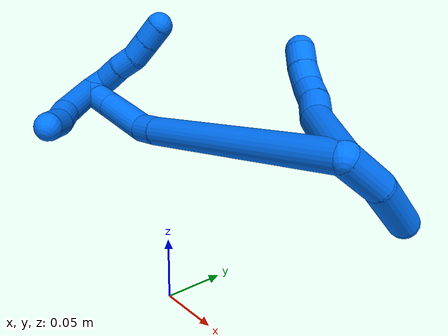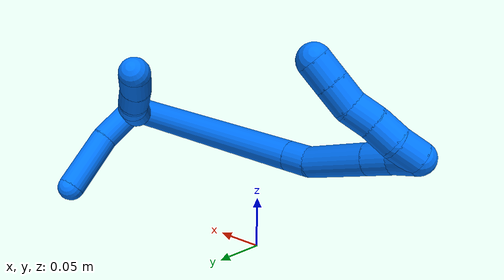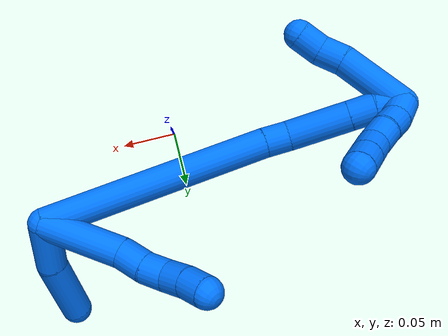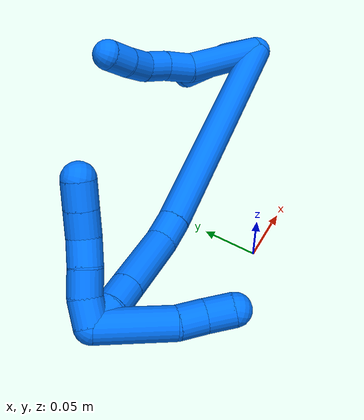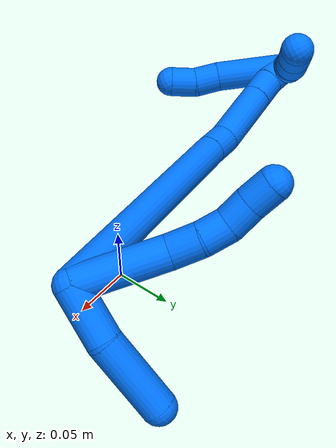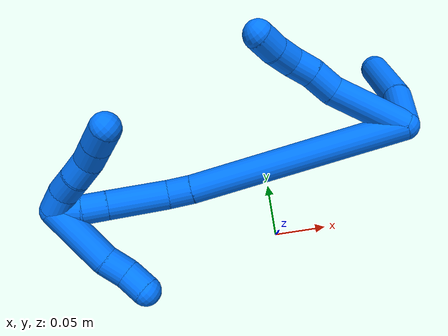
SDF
<sdf version="1.7">
 <world name="default">
  <model name="14">
   <static>0</static>
   <link name="14">
    <collision name="collision-cylinder-e_1_2_8">
     <pose>-0.010452 0.013149 0.028836 -0.427826 -0.318565 0.069767</pose>
     <geometry><cylinder><radius>0.0125</radius><length>0.066743</length></cylinder></geometry>
     <surface>
      <friction><ode><mu>1.16</mu><mu2>1.16</mu2><slip1>0</slip1><slip2>0</slip2></ode></friction>
      <contact><ode><kp>1e+06</kp><kd>1</kd><max_vel>0</max_vel><min_depth>0.001</min_depth></ode></contact>
     </surface>
    </collision>
    <visual name="visual-cylinder-e_1_2_8">
     <pose>-0.010452 0.013149 0.028836 -0.427826 -0.318565 0.069767</pose>
     <geometry><cylinder><radius>0.0125</radius><length>0.066743</length></cylinder></geometry>
     <material><ambient>0 0.462745 1 1</ambient></material>
    </visual>
    <collision name="collision-cylinder-e_2_8_9">
     <pose>-0.022402 0.028268 0.068983 -0.172391 -0.129716 0.011224</pose>
     <geometry><cylinder><radius>0.0125</radius><length>0.023158</length></cylinder></geometry>
     <surface>
      <friction><ode><mu>1.16</mu><mu2>1.16</mu2><slip1>0</slip1><slip2>0</slip2></ode></friction>
      <contact><ode><kp>1e+06</kp><kd>1</kd><max_vel>0</max_vel><min_depth>0.001</min_depth></ode></contact>
     </surface>
    </collision>
    <visual name="visual-cylinder-e_2_8_9">
     <pose>-0.022402 0.028268 0.068983 -0.172391 -0.129716 0.011224</pose>
     <geometry><cylinder><radius>0.0125</radius><length>0.023158</length></cylinder></geometry>
     <material><ambient>0 0.462745 1 1</ambient></material>
    </visual>
    <collision name="collision-cylinder-e_3_9_10">
     <pose>-0.027011 0.031793 0.089678 -0.164302 -0.316165 0.026249</pose>
     <geometry><cylinder><radius>0.0125</radius><length>0.020015</length></cylinder></geometry>
     <surface>
      <friction><ode><mu>1.16</mu><mu2>1.16</mu2><slip1>0</slip1><slip2>0</slip2></ode></friction>
      <contact><ode><kp>1e+06</kp><kd>1</kd><max_vel>0</max_vel><min_depth>0.001</min_depth></ode></contact>
     </surface>
    </collision>
    <visual name="visual-cylinder-e_3_9_10">
     <pose>-0.027011 0.031793 0.089678 -0.164302 -0.316165 0.026249</pose>
     <geometry><cylinder><radius>0.0125</radius><length>0.020015</length></cylinder></geometry>
     <material><ambient>0 0.462745 1 1</ambient></material>
    </visual>
    <collision name="collision-cylinder-e_4_10_11">
     <pose>-0.033156 0.031518 0.108457 0.192439 -0.306899 -0.029854</pose>
     <geometry><cylinder><radius>0.0125</radius><length>0.020081</length></cylinder></geometry>
     <surface>
      <friction><ode><mu>1.16</mu><mu2>1.16</mu2><slip1>0</slip1><slip2>0</slip2></ode></friction>
      <contact><ode><kp>1e+06</kp><kd>1</kd><max_vel>0</max_vel><min_depth>0.001</min_depth></ode></contact>
     </surface>
    </collision>
    <visual name="visual-cylinder-e_4_10_11">
     <pose>-0.033156 0.031518 0.108457 0.192439 -0.306899 -0.029854</pose>
     <geometry><cylinder><radius>0.0125</radius><length>0.020081</length></cylinder></geometry>
     <material><ambient>0 0.462745 1 1</ambient></material>
    </visual>
    <collision name="collision-cylinder-e_5_11_6">
     <pose>-0.037982 0.027872 0.127522 0.185561 -0.180148 -0.016807</pose>
     <geometry><cylinder><radius>0.0125</radius><length>0.020003</length></cylinder></geometry>
     <surface>
      <friction><ode><mu>1.16</mu><mu2>1.16</mu2><slip1>0</slip1><slip2>0</slip2></ode></friction>
      <contact><ode><kp>1e+06</kp><kd>1</kd><max_vel>0</max_vel><min_depth>0.001</min_depth></ode></contact>
     </surface>
    </collision>
    <visual name="visual-cylinder-e_5_11_6">
     <pose>-0.037982 0.027872 0.127522 0.185561 -0.180148 -0.016807</pose>
     <geometry><cylinder><radius>0.0125</radius><length>0.020003</length></cylinder></geometry>
     <material><ambient>0 0.462745 1 1</ambient></material>
    </visual>
    <collision name="collision-cylinder-e_1_2_12">
     <pose>0.012286 0.017025 0.001854 -1.46233 0.622317 -0.561718</pose>
     <geometry><cylinder><radius>0.0125</radius><length>0.042153</length></cylinder></geometry>
     <surface>
      <friction><ode><mu>1.16</mu><mu2>1.16</mu2><slip1>0</slip1><slip2>0</slip2></ode></friction>
      <contact><ode><kp>1e+06</kp><kd>1</kd><max_vel>0</max_vel><min_depth>0.001</min_depth></ode></contact>
     </surface>
    </collision>
    <visual name="visual-cylinder-e_1_2_12">
     <pose>0.012286 0.017025 0.001854 -1.46233 0.622317 -0.561718</pose>
     <geometry><cylinder><radius>0.0125</radius><length>0.042153</length></cylinder></geometry>
     <material><ambient>0 0.462745 1 1</ambient></material>
    </visual>
    <collision name="collision-cylinder-e_2_12_5">
     <pose>0.035484 0.060563 0.007521 -1.42796 0.386853 -0.336236</pose>
     <geometry><cylinder><radius>0.0125</radius><length>0.057847</length></cylinder></geometry>
     <surface>
      <friction><ode><mu>1.16</mu><mu2>1.16</mu2><slip1>0</slip1><slip2>0</slip2></ode></friction>
      <contact><ode><kp>1e+06</kp><kd>1</kd><max_vel>0</max_vel><min_depth>0.001</min_depth></ode></contact>
     </surface>
    </collision>
    <visual name="visual-cylinder-e_2_12_5">
     <pose>0.035484 0.060563 0.007521 -1.42796 0.386853 -0.336236</pose>
     <geometry><cylinder><radius>0.0125</radius><length>0.057847</length></cylinder></geometry>
     <material><ambient>0 0.462745 1 1</ambient></material>
    </visual>
    <collision name="collision-cylinder-e_1_2_13">
     <pose>-0.079311 0.031727 0.035834 -0.724676 -1.02784 0.421628</pose>
     <geometry><cylinder><radius>0.0125</radius><length>0.185266</length></cylinder></geometry>
     <surface>
      <friction><ode><mu>1.16</mu><mu2>1.16</mu2><slip1>0</slip1><slip2>0</slip2></ode></friction>
      <contact><ode><kp>1e+06</kp><kd>1</kd><max_vel>0</max_vel><min_depth>0.001</min_depth></ode></contact>
     </surface>
    </collision>
    <visual name="visual-cylinder-e_1_2_13">
     <pose>-0.079311 0.031727 0.035834 -0.724676 -1.02784 0.421628</pose>
     <geometry><cylinder><radius>0.0125</radius><length>0.185266</length></cylinder></geometry>
     <material><ambient>0 0.462745 1 1</ambient></material>
    </visual>
    <collision name="collision-cylinder-e_2_13_14">
     <pose>-0.167279 0.067131 0.076455 -0.65514 -0.961815 0.350957</pose>
     <geometry><cylinder><radius>0.0125</radius><length>0.021108</length></cylinder></geometry>
     <surface>
      <friction><ode><mu>1.16</mu><mu2>1.16</mu2><slip1>0</slip1><slip2>0</slip2></ode></friction>
      <contact><ode><kp>1e+06</kp><kd>1</kd><max_vel>0</max_vel><min_depth>0.001</min_depth></ode></contact>
     </surface>
    </collision>
    <visual name="visual-cylinder-e_2_13_14">
     <pose>-0.167279 0.067131 0.076455 -0.65514 -0.961815 0.350957</pose>
     <geometry><cylinder><radius>0.0125</radius><length>0.021108</length></cylinder></geometry>
     <material><ambient>0 0.462745 1 1</ambient></material>
    </visual>
    <collision name="collision-cylinder-e_3_14_15">
     <pose>-0.196569 0.073192 0.096618 -0.153738 -0.924709 0.076734</pose>
     <geometry><cylinder><radius>0.0125</radius><length>0.051684</length></cylinder></geometry>
     <surface>
      <friction><ode><mu>1.16</mu><mu2>1.16</mu2><slip1>0</slip1><slip2>0</slip2></ode></friction>
      <contact><ode><kp>1e+06</kp><kd>1</kd><max_vel>0</max_vel><min_depth>0.001</min_depth></ode></contact>
     </surface>
    </collision>
    <visual name="visual-cylinder-e_3_14_15">
     <pose>-0.196569 0.073192 0.096618 -0.153738 -0.924709 0.076734</pose>
     <geometry><cylinder><radius>0.0125</radius><length>0.051684</length></cylinder></geometry>
     <material><ambient>0 0.462745 1 1</ambient></material>
    </visual>
    <collision name="collision-cylinder-e_4_15_16">
     <pose>-0.225667 0.076531 0.118264 -0.151275 -0.927648 0.075779</pose>
     <geometry><cylinder><radius>0.0125</radius><length>0.021154</length></cylinder></geometry>
     <surface>
      <friction><ode><mu>1.16</mu><mu2>1.16</mu2><slip1>0</slip1><slip2>0</slip2></ode></friction>
      <contact><ode><kp>1e+06</kp><kd>1</kd><max_vel>0</max_vel><min_depth>0.001</min_depth></ode></contact>
     </surface>
    </collision>
    <visual name="visual-cylinder-e_4_15_16">
     <pose>-0.225667 0.076531 0.118264 -0.151275 -0.927648 0.075779</pose>
     <geometry><cylinder><radius>0.0125</radius><length>0.021154</length></cylinder></geometry>
     <material><ambient>0 0.462745 1 1</ambient></material>
    </visual>
    <collision name="collision-cylinder-e_5_16_1">
     <pose>-0.241403 0.079594 0.131655 -0.287674 -0.774945 0.11808</pose>
     <geometry><cylinder><radius>0.0125</radius><length>0.020787</length></cylinder></geometry>
     <surface>
      <friction><ode><mu>1.16</mu><mu2>1.16</mu2><slip1>0</slip1><slip2>0</slip2></ode></friction>
      <contact><ode><kp>1e+06</kp><kd>1</kd><max_vel>0</max_vel><min_depth>0.001</min_depth></ode></contact>
     </surface>
    </collision>
    <visual name="visual-cylinder-e_5_16_1">
     <pose>-0.241403 0.079594 0.131655 -0.287674 -0.774945 0.11808</pose>
     <geometry><cylinder><radius>0.0125</radius><length>0.020787</length></cylinder></geometry>
     <material><ambient>0 0.462745 1 1</ambient></material>
    </visual>
    <collision name="collision-cylinder-e_1_1_17">
     <pose>-0.249212 0.070436 0.112209 2.74057 -0.018615 -0.09153</pose>
     <geometry><cylinder><radius>0.0125</radius><length>0.057723</length></cylinder></geometry>
     <surface>
      <friction><ode><mu>1.16</mu><mu2>1.16</mu2><slip1>0</slip1><slip2>0</slip2></ode></friction>
      <contact><ode><kp>1e+06</kp><kd>1</kd><max_vel>0</max_vel><min_depth>0.001</min_depth></ode></contact>
     </surface>
    </collision>
    <visual name="visual-cylinder-e_1_1_17">
     <pose>-0.249212 0.070436 0.112209 2.74057 -0.018615 -0.09153</pose>
     <geometry><cylinder><radius>0.0125</radius><length>0.057723</length></cylinder></geometry>
     <material><ambient>0 0.462745 1 1</ambient></material>
    </visual>
    <collision name="collision-cylinder-e_2_17_18">
     <pose>-0.247633 0.055163 0.076095 2.74414 0.201604 0.930896</pose>
     <geometry><cylinder><radius>0.0125</radius><length>0.021138</length></cylinder></geometry>
     <surface>
      <friction><ode><mu>1.16</mu><mu2>1.16</mu2><slip1>0</slip1><slip2>0</slip2></ode></friction>
      <contact><ode><kp>1e+06</kp><kd>1</kd><max_vel>0</max_vel><min_depth>0.001</min_depth></ode></contact>
     </surface>
    </collision>
    <visual name="visual-cylinder-e_2_17_18">
     <pose>-0.247633 0.055163 0.076095 2.74414 0.201604 0.930896</pose>
     <geometry><cylinder><radius>0.0125</radius><length>0.021138</length></cylinder></geometry>
     <material><ambient>0 0.462745 1 1</ambient></material>
    </visual>
    <collision name="collision-cylinder-e_3_18_4">
     <pose>-0.244966 0.044849 0.058082 2.50127 0.052133 0.156946</pose>
     <geometry><cylinder><radius>0.0125</radius><length>0.021139</length></cylinder></geometry>
     <surface>
      <friction><ode><mu>1.16</mu><mu2>1.16</mu2><slip1>0</slip1><slip2>0</slip2></ode></friction>
      <contact><ode><kp>1e+06</kp><kd>1</kd><max_vel>0</max_vel><min_depth>0.001</min_depth></ode></contact>
     </surface>
    </collision>
    <visual name="visual-cylinder-e_3_18_4">
     <pose>-0.244966 0.044849 0.058082 2.50127 0.052133 0.156946</pose>
     <geometry><cylinder><radius>0.0125</radius><length>0.021139</length></cylinder></geometry>
     <material><ambient>0 0.462745 1 1</ambient></material>
    </visual>
    <collision name="collision-cylinder-e_1_1_19">
     <pose>-0.240289 0.077779 0.142558 0.803483 0.994632 0.453308</pose>
     <geometry><cylinder><radius>0.0125</radius><length>0.02</length></cylinder></geometry>
     <surface>
      <friction><ode><mu>1.16</mu><mu2>1.16</mu2><slip1>0</slip1><slip2>0</slip2></ode></friction>
      <contact><ode><kp>1e+06</kp><kd>1</kd><max_vel>0</max_vel><min_depth>0.001</min_depth></ode></contact>
     </surface>
    </collision>
    <visual name="visual-cylinder-e_1_1_19">
     <pose>-0.240289 0.077779 0.142558 0.803483 0.994632 0.453308</pose>
     <geometry><cylinder><radius>0.0125</radius><length>0.02</length></cylinder></geometry>
     <material><ambient>0 0.462745 1 1</ambient></material>
    </visual>
    <collision name="collision-cylinder-e_2_19_20">
     <pose>-0.224191 0.067895 0.148569 1.21313 0.880827 0.632055</pose>
     <geometry><cylinder><radius>0.0125</radius><length>0.02</length></cylinder></geometry>
     <surface>
      <friction><ode><mu>1.16</mu><mu2>1.16</mu2><slip1>0</slip1><slip2>0</slip2></ode></friction>
      <contact><ode><kp>1e+06</kp><kd>1</kd><max_vel>0</max_vel><min_depth>0.001</min_depth></ode></contact>
     </surface>
    </collision>
    <visual name="visual-cylinder-e_2_19_20">
     <pose>-0.224191 0.067895 0.148569 1.21313 0.880827 0.632055</pose>
     <geometry><cylinder><radius>0.0125</radius><length>0.02</length></cylinder></geometry>
     <material><ambient>0 0.462745 1 1</ambient></material>
    </visual>
    <collision name="collision-cylinder-e_3_20_21">
     <pose>-0.207999 0.057155 0.153094 1.12267 1.01201 0.670568</pose>
     <geometry><cylinder><radius>0.0125</radius><length>0.02</length></cylinder></geometry>
     <surface>
      <friction><ode><mu>1.16</mu><mu2>1.16</mu2><slip1>0</slip1><slip2>0</slip2></ode></friction>
      <contact><ode><kp>1e+06</kp><kd>1</kd><max_vel>0</max_vel><min_depth>0.001</min_depth></ode></contact>
     </surface>
    </collision>
    <visual name="visual-cylinder-e_3_20_21">
     <pose>-0.207999 0.057155 0.153094 1.12267 1.01201 0.670568</pose>
     <geometry><cylinder><radius>0.0125</radius><length>0.02</length></cylinder></geometry>
     <material><ambient>0 0.462745 1 1</ambient></material>
    </visual>
    <collision name="collision-cylinder-e_4_21_22">
     <pose>-0.192877 0.045903 0.159126 1.04756 0.726636 0.432334</pose>
     <geometry><cylinder><radius>0.0125</radius><length>0.02</length></cylinder></geometry>
     <surface>
      <friction><ode><mu>1.16</mu><mu2>1.16</mu2><slip1>0</slip1><slip2>0</slip2></ode></friction>
      <contact><ode><kp>1e+06</kp><kd>1</kd><max_vel>0</max_vel><min_depth>0.001</min_depth></ode></contact>
     </surface>
    </collision>
    <visual name="visual-cylinder-e_4_21_22">
     <pose>-0.192877 0.045903 0.159126 1.04756 0.726636 0.432334</pose>
     <geometry><cylinder><radius>0.0125</radius><length>0.02</length></cylinder></geometry>
     <material><ambient>0 0.462745 1 1</ambient></material>
    </visual>
    <collision name="collision-cylinder-e_5_22_3">
     <pose>-0.179629 0.032903 0.166577 1.05304 0.721333 0.431624</pose>
     <geometry><cylinder><radius>0.0125</radius><length>0.02</length></cylinder></geometry>
     <surface>
      <friction><ode><mu>1.16</mu><mu2>1.16</mu2><slip1>0</slip1><slip2>0</slip2></ode></friction>
      <contact><ode><kp>1e+06</kp><kd>1</kd><max_vel>0</max_vel><min_depth>0.001</min_depth></ode></contact>
     </surface>
    </collision>
    <visual name="visual-cylinder-e_5_22_3">
     <pose>-0.179629 0.032903 0.166577 1.05304 0.721333 0.431624</pose>
     <geometry><cylinder><radius>0.0125</radius><length>0.02</length></cylinder></geometry>
     <material><ambient>0 0.462745 1 1</ambient></material>
    </visual>
    <collision name="collision-sphere-3">
     <pose>-0.173026 0.026378 0.170294 0 -0 0</pose>
     <geometry><sphere><radius>0.0125</radius></sphere></geometry>
     <surface>
      <friction><ode><mu>1.16</mu><mu2>1.16</mu2><slip1>0</slip1><slip2>0</slip2></ode></friction>
      <contact><ode><kp>1e+06</kp><kd>1</kd><max_vel>0</max_vel><min_depth>0.001</min_depth></ode></contact>
     </surface>
    </collision>
    <visual name="visual-sphere-3">
     <pose>-0.173026 0.026378 0.170294 0 -0 0</pose>
     <geometry><sphere><radius>0.0125</radius></sphere></geometry>
     <material><ambient>0 0.462745 1 1</ambient></material>
    </visual>
    <collision name="collision-sphere-22">
     <pose>-0.186233 0.039428 0.162861 0 -0 0</pose>
     <geometry><sphere><radius>0.0125</radius></sphere></geometry>
     <surface>
      <friction><ode><mu>1.16</mu><mu2>1.16</mu2><slip1>0</slip1><slip2>0</slip2></ode></friction>
      <contact><ode><kp>1e+06</kp><kd>1</kd><max_vel>0</max_vel><min_depth>0.001</min_depth></ode></contact>
     </surface>
    </collision>
    <visual name="visual-sphere-22">
     <pose>-0.186233 0.039428 0.162861 0 -0 0</pose>
     <geometry><sphere><radius>0.0125</radius></sphere></geometry>
     <material><ambient>0 0.462745 1 1</ambient></material>
    </visual>
    <collision name="collision-sphere-21">
     <pose>-0.19952 0.052377 0.155391 0 -0 0</pose>
     <geometry><sphere><radius>0.0125</radius></sphere></geometry>
     <surface>
      <friction><ode><mu>1.16</mu><mu2>1.16</mu2><slip1>0</slip1><slip2>0</slip2></ode></friction>
      <contact><ode><kp>1e+06</kp><kd>1</kd><max_vel>0</max_vel><min_depth>0.001</min_depth></ode></contact>
     </surface>
    </collision>
    <visual name="visual-sphere-21">
     <pose>-0.19952 0.052377 0.155391 0 -0 0</pose>
     <geometry><sphere><radius>0.0125</radius></sphere></geometry>
     <material><ambient>0 0.462745 1 1</ambient></material>
    </visual>
    <collision name="collision-sphere-20">
     <pose>-0.216478 0.061933 0.150797 0 -0 0</pose>
     <geometry><sphere><radius>0.0125</radius></sphere></geometry>
     <surface>
      <friction><ode><mu>1.16</mu><mu2>1.16</mu2><slip1>0</slip1><slip2>0</slip2></ode></friction>
      <contact><ode><kp>1e+06</kp><kd>1</kd><max_vel>0</max_vel><min_depth>0.001</min_depth></ode></contact>
     </surface>
    </collision>
    <visual name="visual-sphere-20">
     <pose>-0.216478 0.061933 0.150797 0 -0 0</pose>
     <geometry><sphere><radius>0.0125</radius></sphere></geometry>
     <material><ambient>0 0.462745 1 1</ambient></material>
    </visual>
    <collision name="collision-sphere-19">
     <pose>-0.231904 0.073858 0.14634 0 -0 0</pose>
     <geometry><sphere><radius>0.0125</radius></sphere></geometry>
     <surface>
      <friction><ode><mu>1.16</mu><mu2>1.16</mu2><slip1>0</slip1><slip2>0</slip2></ode></friction>
      <contact><ode><kp>1e+06</kp><kd>1</kd><max_vel>0</max_vel><min_depth>0.001</min_depth></ode></contact>
     </surface>
    </collision>
    <visual name="visual-sphere-19">
     <pose>-0.231904 0.073858 0.14634 0 -0 0</pose>
     <geometry><sphere><radius>0.0125</radius></sphere></geometry>
     <material><ambient>0 0.462745 1 1</ambient></material>
    </visual>
    <collision name="collision-sphere-6">
     <pose>-0.039774 0.026057 0.137193 0 -0 0</pose>
     <geometry><sphere><radius>0.0125</radius></sphere></geometry>
     <surface>
      <friction><ode><mu>1.16</mu><mu2>1.16</mu2><slip1>0</slip1><slip2>0</slip2></ode></friction>
      <contact><ode><kp>1e+06</kp><kd>1</kd><max_vel>0</max_vel><min_depth>0.001</min_depth></ode></contact>
     </surface>
    </collision>
    <visual name="visual-sphere-6">
     <pose>-0.039774 0.026057 0.137193 0 -0 0</pose>
     <geometry><sphere><radius>0.0125</radius></sphere></geometry>
     <material><ambient>0 0.462745 1 1</ambient></material>
    </visual>
    <collision name="collision-sphere-11">
     <pose>-0.03619 0.029688 0.117851 0 -0 0</pose>
     <geometry><sphere><radius>0.0125</radius></sphere></geometry>
     <surface>
      <friction><ode><mu>1.16</mu><mu2>1.16</mu2><slip1>0</slip1><slip2>0</slip2></ode></friction>
      <contact><ode><kp>1e+06</kp><kd>1</kd><max_vel>0</max_vel><min_depth>0.001</min_depth></ode></contact>
     </surface>
    </collision>
    <visual name="visual-sphere-11">
     <pose>-0.03619 0.029688 0.117851 0 -0 0</pose>
     <geometry><sphere><radius>0.0125</radius></sphere></geometry>
     <material><ambient>0 0.462745 1 1</ambient></material>
    </visual>
    <collision name="collision-sphere-10">
     <pose>-0.030123 0.033349 0.099062 0 -0 0</pose>
     <geometry><sphere><radius>0.0125</radius></sphere></geometry>
     <surface>
      <friction><ode><mu>1.16</mu><mu2>1.16</mu2><slip1>0</slip1><slip2>0</slip2></ode></friction>
      <contact><ode><kp>1e+06</kp><kd>1</kd><max_vel>0</max_vel><min_depth>0.001</min_depth></ode></contact>
     </surface>
    </collision>
    <visual name="visual-sphere-10">
     <pose>-0.030123 0.033349 0.099062 0 -0 0</pose>
     <geometry><sphere><radius>0.0125</radius></sphere></geometry>
     <material><ambient>0 0.462745 1 1</ambient></material>
    </visual>
    <collision name="collision-sphere-9">
     <pose>-0.0239 0.030237 0.080295 0 -0 0</pose>
     <geometry><sphere><radius>0.0125</radius></sphere></geometry>
     <surface>
      <friction><ode><mu>1.16</mu><mu2>1.16</mu2><slip1>0</slip1><slip2>0</slip2></ode></friction>
      <contact><ode><kp>1e+06</kp><kd>1</kd><max_vel>0</max_vel><min_depth>0.001</min_depth></ode></contact>
     </surface>
    </collision>
    <visual name="visual-sphere-9">
     <pose>-0.0239 0.030237 0.080295 0 -0 0</pose>
     <geometry><sphere><radius>0.0125</radius></sphere></geometry>
     <material><ambient>0 0.462745 1 1</ambient></material>
    </visual>
    <collision name="collision-sphere-2">
     <geometry><sphere><radius>0.0125</radius></sphere></geometry>
     <surface>
      <friction><ode><mu>1.16</mu><mu2>1.16</mu2><slip1>0</slip1><slip2>0</slip2></ode></friction>
      <contact><ode><kp>1e+06</kp><kd>1</kd><max_vel>0</max_vel><min_depth>0.001</min_depth></ode></contact>
     </surface>
    </collision>
    <visual name="visual-sphere-2">
     <geometry><sphere><radius>0.0125</radius></sphere></geometry>
     <material><ambient>0 0.462745 1 1</ambient></material>
    </visual>
    <collision name="collision-sphere-8">
     <pose>-0.020904 0.026298 0.057672 0 -0 0</pose>
     <geometry><sphere><radius>0.0125</radius></sphere></geometry>
     <surface>
      <friction><ode><mu>1.16</mu><mu2>1.16</mu2><slip1>0</slip1><slip2>0</slip2></ode></friction>
      <contact><ode><kp>1e+06</kp><kd>1</kd><max_vel>0</max_vel><min_depth>0.001</min_depth></ode></contact>
     </surface>
    </collision>
    <visual name="visual-sphere-8">
     <pose>-0.020904 0.026298 0.057672 0 -0 0</pose>
     <geometry><sphere><radius>0.0125</radius></sphere></geometry>
     <material><ambient>0 0.462745 1 1</ambient></material>
    </visual>
    <collision name="collision-sphere-12">
     <pose>0.024572 0.034049 0.003708 0 -0 0</pose>
     <geometry><sphere><radius>0.0125</radius></sphere></geometry>
     <surface>
      <friction><ode><mu>1.16</mu><mu2>1.16</mu2><slip1>0</slip1><slip2>0</slip2></ode></friction>
      <contact><ode><kp>1e+06</kp><kd>1</kd><max_vel>0</max_vel><min_depth>0.001</min_depth></ode></contact>
     </surface>
    </collision>
    <visual name="visual-sphere-12">
     <pose>0.024572 0.034049 0.003708 0 -0 0</pose>
     <geometry><sphere><radius>0.0125</radius></sphere></geometry>
     <material><ambient>0 0.462745 1 1</ambient></material>
    </visual>
    <collision name="collision-sphere-5">
     <pose>0.046396 0.087076 0.011334 0 -0 0</pose>
     <geometry><sphere><radius>0.0125</radius></sphere></geometry>
     <surface>
      <friction><ode><mu>1.16</mu><mu2>1.16</mu2><slip1>0</slip1><slip2>0</slip2></ode></friction>
      <contact><ode><kp>1e+06</kp><kd>1</kd><max_vel>0</max_vel><min_depth>0.001</min_depth></ode></contact>
     </surface>
    </collision>
    <visual name="visual-sphere-5">
     <pose>0.046396 0.087076 0.011334 0 -0 0</pose>
     <geometry><sphere><radius>0.0125</radius></sphere></geometry>
     <material><ambient>0 0.462745 1 1</ambient></material>
    </visual>
    <collision name="collision-sphere-13">
     <pose>-0.158622 0.063453 0.071668 0 -0 0</pose>
     <geometry><sphere><radius>0.0125</radius></sphere></geometry>
     <surface>
      <friction><ode><mu>1.16</mu><mu2>1.16</mu2><slip1>0</slip1><slip2>0</slip2></ode></friction>
      <contact><ode><kp>1e+06</kp><kd>1</kd><max_vel>0</max_vel><min_depth>0.001</min_depth></ode></contact>
     </surface>
    </collision>
    <visual name="visual-sphere-13">
     <pose>-0.158622 0.063453 0.071668 0 -0 0</pose>
     <geometry><sphere><radius>0.0125</radius></sphere></geometry>
     <material><ambient>0 0.462745 1 1</ambient></material>
    </visual>
    <collision name="collision-sphere-14">
     <pose>-0.175936 0.07081 0.081243 0 -0 0</pose>
     <geometry><sphere><radius>0.0125</radius></sphere></geometry>
     <surface>
      <friction><ode><mu>1.16</mu><mu2>1.16</mu2><slip1>0</slip1><slip2>0</slip2></ode></friction>
      <contact><ode><kp>1e+06</kp><kd>1</kd><max_vel>0</max_vel><min_depth>0.001</min_depth></ode></contact>
     </surface>
    </collision>
    <visual name="visual-sphere-14">
     <pose>-0.175936 0.07081 0.081243 0 -0 0</pose>
     <geometry><sphere><radius>0.0125</radius></sphere></geometry>
     <material><ambient>0 0.462745 1 1</ambient></material>
    </visual>
    <collision name="collision-sphere-15">
     <pose>-0.217203 0.075575 0.111993 0 -0 0</pose>
     <geometry><sphere><radius>0.0125</radius></sphere></geometry>
     <surface>
      <friction><ode><mu>1.16</mu><mu2>1.16</mu2><slip1>0</slip1><slip2>0</slip2></ode></friction>
      <contact><ode><kp>1e+06</kp><kd>1</kd><max_vel>0</max_vel><min_depth>0.001</min_depth></ode></contact>
     </surface>
    </collision>
    <visual name="visual-sphere-15">
     <pose>-0.217203 0.075575 0.111993 0 -0 0</pose>
     <geometry><sphere><radius>0.0125</radius></sphere></geometry>
     <material><ambient>0 0.462745 1 1</ambient></material>
    </visual>
    <collision name="collision-sphere-16">
     <pose>-0.234131 0.077487 0.124535 0 -0 0</pose>
     <geometry><sphere><radius>0.0125</radius></sphere></geometry>
     <surface>
      <friction><ode><mu>1.16</mu><mu2>1.16</mu2><slip1>0</slip1><slip2>0</slip2></ode></friction>
      <contact><ode><kp>1e+06</kp><kd>1</kd><max_vel>0</max_vel><min_depth>0.001</min_depth></ode></contact>
     </surface>
    </collision>
    <visual name="visual-sphere-16">
     <pose>-0.234131 0.077487 0.124535 0 -0 0</pose>
     <geometry><sphere><radius>0.0125</radius></sphere></geometry>
     <material><ambient>0 0.462745 1 1</ambient></material>
    </visual>
    <collision name="collision-sphere-1">
     <pose>-0.248675 0.0817 0.138776 0 -0 0</pose>
     <geometry><sphere><radius>0.0125</radius></sphere></geometry>
     <surface>
      <friction><ode><mu>1.16</mu><mu2>1.16</mu2><slip1>0</slip1><slip2>0</slip2></ode></friction>
      <contact><ode><kp>1e+06</kp><kd>1</kd><max_vel>0</max_vel><min_depth>0.001</min_depth></ode></contact>
     </surface>
    </collision>
    <visual name="visual-sphere-1">
     <pose>-0.248675 0.0817 0.138776 0 -0 0</pose>
     <geometry><sphere><radius>0.0125</radius></sphere></geometry>
     <material><ambient>0 0.462745 1 1</ambient></material>
    </visual>
    <collision name="collision-sphere-18">
     <pose>-0.245517 0.051155 0.066547 0 -0 0</pose>
     <geometry><sphere><radius>0.0125</radius></sphere></geometry>
     <surface>
      <friction><ode><mu>1.16</mu><mu2>1.16</mu2><slip1>0</slip1><slip2>0</slip2></ode></friction>
      <contact><ode><kp>1e+06</kp><kd>1</kd><max_vel>0</max_vel><min_depth>0.001</min_depth></ode></contact>
     </surface>
    </collision>
    <visual name="visual-sphere-18">
     <pose>-0.245517 0.051155 0.066547 0 -0 0</pose>
     <geometry><sphere><radius>0.0125</radius></sphere></geometry>
     <material><ambient>0 0.462745 1 1</ambient></material>
    </visual>
    <collision name="collision-sphere-17">
     <pose>-0.249749 0.059171 0.085642 0 -0 0</pose>
     <geometry><sphere><radius>0.0125</radius></sphere></geometry>
     <surface>
      <friction><ode><mu>1.16</mu><mu2>1.16</mu2><slip1>0</slip1><slip2>0</slip2></ode></friction>
      <contact><ode><kp>1e+06</kp><kd>1</kd><max_vel>0</max_vel><min_depth>0.001</min_depth></ode></contact>
     </surface>
    </collision>
    <visual name="visual-sphere-17">
     <pose>-0.249749 0.059171 0.085642 0 -0 0</pose>
     <geometry><sphere><radius>0.0125</radius></sphere></geometry>
     <material><ambient>0 0.462745 1 1</ambient></material>
    </visual>
    <collision name="collision-sphere-4">
     <pose>-0.244415 0.038543 0.049618 0 -0 0</pose>
     <geometry><sphere><radius>0.0125</radius></sphere></geometry>
     <surface>
      <friction><ode><mu>1.16</mu><mu2>1.16</mu2><slip1>0</slip1><slip2>0</slip2></ode></friction>
      <contact><ode><kp>1e+06</kp><kd>1</kd><max_vel>0</max_vel><min_depth>0.001</min_depth></ode></contact>
     </surface>
    </collision>
    <visual name="visual-sphere-4">
     <pose>-0.244415 0.038543 0.049618 0 -0 0</pose>
     <geometry><sphere><radius>0.0125</radius></sphere></geometry>
     <material><ambient>0 0.462745 1 1</ambient></material>
    </visual>
    <inertial>
     <pose>-0.112648 0.044992 0.071674 0 -0 0</pose>
     <mass>0.75</mass>
     <inertia>
      <ixx>0.00044</ixx>
      <ixy>0</ixy>
      <ixz>0</ixz>
      <iyy>0.000653</iyy>
      <iyz>0</iyz>
      <izz>0.000278</izz>
     </inertia>
    </inertial>
   </link>
   <pose>0.110214 0.063274 0.133267 -1.01674 -0.026517 0.662784</pose>
  </model>
 </world>
</sdf>
